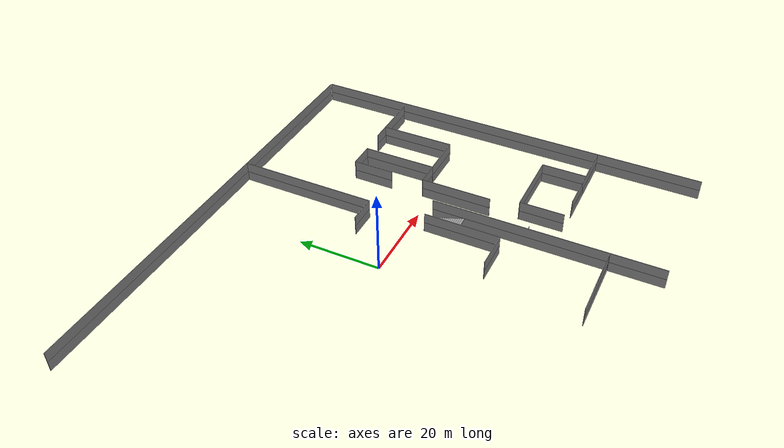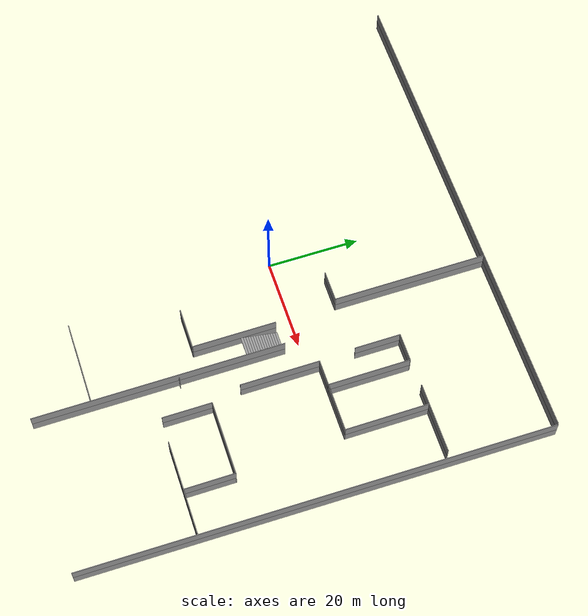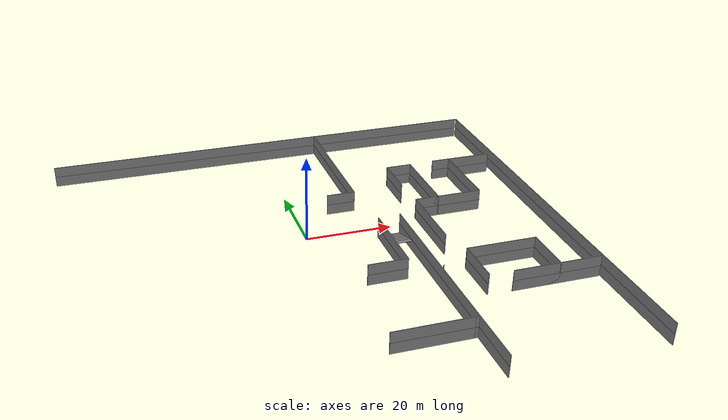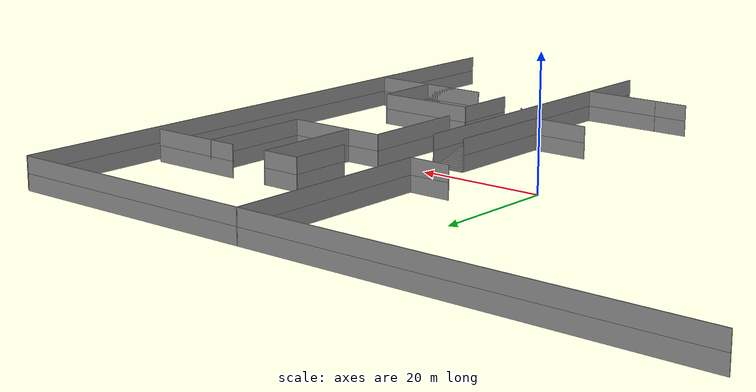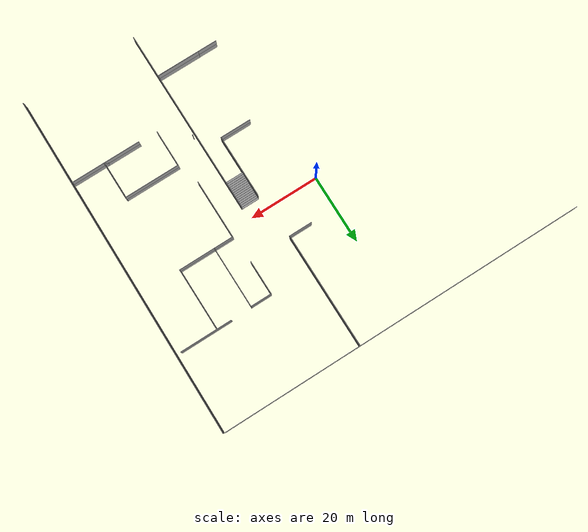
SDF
<sdf version="1.6">
 <model name="new_building">
  <pose>1.10912 -6.88825 0 0 -0 0</pose>
  <link name="Stairs_2">
   <visual name="Stairs_2_Visual_0">
    <pose>17.1005 3.25322 0.083333 0 -0 0</pose>
    <geometry><box><size>5 0.533333 0.166667</size></box></geometry>
    <material>
     <script><uri>file://media/materials/scripts/gazebo.material</uri><name>Gazebo/Grey</name></script>
     <ambient>1 1 1 1</ambient>
    </material>
    <meta><layer>0</layer></meta>
   </visual>
   <collision name="Stairs_2_Collision_0">
    <geometry><box><size>5 0.533333 0.166667</size></box></geometry>
    <pose>17.1005 3.25322 0.083333 0 -0 0</pose>
   </collision>
   <visual name="Stairs_2_Visual_1">
    <pose>17.1005 2.71989 0.25 0 -0 0</pose>
    <geometry><box><size>5 0.533333 0.166667</size></box></geometry>
    <material>
     <script><uri>file://media/materials/scripts/gazebo.material</uri><name>Gazebo/Grey</name></script>
     <ambient>1 1 1 1</ambient>
    </material>
    <meta><layer>0</layer></meta>
   </visual>
   <collision name="Stairs_2_Collision_1">
    <geometry><box><size>5 0.533333 0.166667</size></box></geometry>
    <pose>17.1005 2.71989 0.25 0 -0 0</pose>
   </collision>
   <visual name="Stairs_2_Visual_2">
    <pose>17.1005 2.18655 0.416667 0 -0 0</pose>
    <geometry><box><size>5 0.533333 0.166667</size></box></geometry>
    <material>
     <script><uri>file://media/materials/scripts/gazebo.material</uri><name>Gazebo/Grey</name></script>
     <ambient>1 1 1 1</ambient>
    </material>
    <meta><layer>0</layer></meta>
   </visual>
   <collision name="Stairs_2_Collision_2">
    <geometry><box><size>5 0.533333 0.166667</size></box></geometry>
    <pose>17.1005 2.18655 0.416667 0 -0 0</pose>
   </collision>
   <visual name="Stairs_2_Visual_3">
    <pose>17.1005 1.65322 0.583333 0 -0 0</pose>
    <geometry><box><size>5 0.533333 0.166667</size></box></geometry>
    <material>
     <script><uri>file://media/materials/scripts/gazebo.material</uri><name>Gazebo/Grey</name></script>
     <ambient>1 1 1 1</ambient>
    </material>
    <meta><layer>0</layer></meta>
   </visual>
   <collision name="Stairs_2_Collision_3">
    <geometry><box><size>5 0.533333 0.166667</size></box></geometry>
    <pose>17.1005 1.65322 0.583333 0 -0 0</pose>
   </collision>
   <visual name="Stairs_2_Visual_4">
    <pose>17.1005 1.11989 0.75 0 -0 0</pose>
    <geometry><box><size>5 0.533333 0.166667</size></box></geometry>
    <material>
     <script><uri>file://media/materials/scripts/gazebo.material</uri><name>Gazebo/Grey</name></script>
     <ambient>1 1 1 1</ambient>
    </material>
    <meta><layer>0</layer></meta>
   </visual>
   <collision name="Stairs_2_Collision_4">
    <geometry><box><size>5 0.533333 0.166667</size></box></geometry>
    <pose>17.1005 1.11989 0.75 0 -0 0</pose>
   </collision>
   <visual name="Stairs_2_Visual_5">
    <pose>17.1005 0.586554 0.916667 0 -0 0</pose>
    <geometry><box><size>5 0.533333 0.166667</size></box></geometry>
    <material>
     <script><uri>file://media/materials/scripts/gazebo.material</uri><name>Gazebo/Grey</name></script>
     <ambient>1 1 1 1</ambient>
    </material>
    <meta><layer>0</layer></meta>
   </visual>
   <collision name="Stairs_2_Collision_5">
    <geometry><box><size>5 0.533333 0.166667</size></box></geometry>
    <pose>17.1005 0.586554 0.916667 0 -0 0</pose>
   </collision>
   <visual name="Stairs_2_Visual_6">
    <pose>17.1005 0.05322 1.08333 0 -0 0</pose>
    <geometry><box><size>5 0.533333 0.166667</size></box></geometry>
    <material>
     <script><uri>file://media/materials/scripts/gazebo.material</uri><name>Gazebo/Grey</name></script>
     <ambient>1 1 1 1</ambient>
    </material>
    <meta><layer>0</layer></meta>
   </visual>
   <collision name="Stairs_2_Collision_6">
    <geometry><box><size>5 0.533333 0.166667</size></box></geometry>
    <pose>17.1005 0.05322 1.08333 0 -0 0</pose>
   </collision>
   <visual name="Stairs_2_Visual_7">
    <pose>17.1005 -0.480113 1.25 0 -0 0</pose>
    <geometry><box><size>5 0.533333 0.166667</size></box></geometry>
    <material>
     <script><uri>file://media/materials/scripts/gazebo.material</uri><name>Gazebo/Grey</name></script>
     <ambient>1 1 1 1</ambient>
    </material>
    <meta><layer>0</layer></meta>
   </visual>
   <collision name="Stairs_2_Collision_7">
    <geometry><box><size>5 0.533333 0.166667</size></box></geometry>
    <pose>17.1005 -0.480113 1.25 0 -0 0</pose>
   </collision>
   <visual name="Stairs_2_Visual_8">
    <pose>17.1005 -1.01345 1.41667 0 -0 0</pose>
    <geometry><box><size>5 0.533333 0.166667</size></box></geometry>
    <material>
     <script><uri>file://media/materials/scripts/gazebo.material</uri><name>Gazebo/Grey</name></script>
     <ambient>1 1 1 1</ambient>
    </material>
    <meta><layer>0</layer></meta>
   </visual>
   <collision name="Stairs_2_Collision_8">
    <geometry><box><size>5 0.533333 0.166667</size></box></geometry>
    <pose>17.1005 -1.01345 1.41667 0 -0 0</pose>
   </collision>
   <visual name="Stairs_2_Visual_9">
    <pose>17.1005 -1.54678 1.58333 0 -0 0</pose>
    <geometry><box><size>5 0.533333 0.166667</size></box></geometry>
    <material>
     <script><uri>file://media/materials/scripts/gazebo.material</uri><name>Gazebo/Grey</name></script>
     <ambient>1 1 1 1</ambient>
    </material>
    <meta><layer>0</layer></meta>
   </visual>
   <collision name="Stairs_2_Collision_9">
    <geometry><box><size>5 0.533333 0.166667</size></box></geometry>
    <pose>17.1005 -1.54678 1.58333 0 -0 0</pose>
   </collision>
   <visual name="Stairs_2_Visual_10">
    <pose>17.1005 -2.08011 1.75 0 -0 0</pose>
    <geometry><box><size>5 0.533333 0.166667</size></box></geometry>
    <material>
     <script><uri>file://media/materials/scripts/gazebo.material</uri><name>Gazebo/Grey</name></script>
     <ambient>1 1 1 1</ambient>
    </material>
    <meta><layer>0</layer></meta>
   </visual>
   <collision name="Stairs_2_Collision_10">
    <geometry><box><size>5 0.533333 0.166667</size></box></geometry>
    <pose>17.1005 -2.08011 1.75 0 -0 0</pose>
   </collision>
   <visual name="Stairs_2_Visual_11">
    <pose>17.1005 -2.61345 1.91667 0 -0 0</pose>
    <geometry><box><size>5 0.533333 0.166667</size></box></geometry>
    <material>
     <script><uri>file://media/materials/scripts/gazebo.material</uri><name>Gazebo/Grey</name></script>
     <ambient>1 1 1 1</ambient>
    </material>
    <meta><layer>0</layer></meta>
   </visual>
   <collision name="Stairs_2_Collision_11">
    <geometry><box><size>5 0.533333 0.166667</size></box></geometry>
    <pose>17.1005 -2.61345 1.91667 0 -0 0</pose>
   </collision>
   <visual name="Stairs_2_Visual_12">
    <pose>17.1005 -3.14678 2.08333 0 -0 0</pose>
    <geometry><box><size>5 0.533333 0.166667</size></box></geometry>
    <material>
     <script><uri>file://media/materials/scripts/gazebo.material</uri><name>Gazebo/Grey</name></script>
     <ambient>1 1 1 1</ambient>
    </material>
    <meta><layer>0</layer></meta>
   </visual>
   <collision name="Stairs_2_Collision_12">
    <geometry><box><size>5 0.533333 0.166667</size></box></geometry>
    <pose>17.1005 -3.14678 2.08333 0 -0 0</pose>
   </collision>
   <visual name="Stairs_2_Visual_13">
    <pose>17.1005 -3.68011 2.25 0 -0 0</pose>
    <geometry><box><size>5 0.533333 0.166667</size></box></geometry>
    <material>
     <script><uri>file://media/materials/scripts/gazebo.material</uri><name>Gazebo/Grey</name></script>
     <ambient>1 1 1 1</ambient>
    </material>
    <meta><layer>0</layer></meta>
   </visual>
   <collision name="Stairs_2_Collision_13">
    <geometry><box><size>5 0.533333 0.166667</size></box></geometry>
    <pose>17.1005 -3.68011 2.25 0 -0 0</pose>
   </collision>
   <visual name="Stairs_2_Visual_14">
    <pose>17.1005 -4.21345 2.41667 0 -0 0</pose>
    <geometry><box><size>5 0.533333 0.166667</size></box></geometry>
    <material>
     <script><uri>file://media/materials/scripts/gazebo.material</uri><name>Gazebo/Grey</name></script>
     <ambient>1 1 1 1</ambient>
    </material>
    <meta><layer>0</layer></meta>
   </visual>
   <collision name="Stairs_2_Collision_14">
    <geometry><box><size>5 0.533333 0.166667</size></box></geometry>
    <pose>17.1005 -4.21345 2.41667 0 -0 0</pose>
   </collision>
  </link>
  <link name="Wall_103">
   <collision name="Wall_103_Collision">
    <geometry><box><size>33.75 0.15 2.5</size></box></geometry>
    <pose>0 0 1.25 0 -0 0</pose>
   </collision>
   <visual name="Wall_103_Visual">
    <pose>0 0 1.25 0 -0 0</pose>
    <geometry><box><size>33.75 0.15 2.5</size></box></geometry>
    <material>
     <script><uri>file://media/materials/scripts/gazebo.material</uri><name>Gazebo/Grey</name></script>
     <ambient>1 1 1 1</ambient>
    </material>
    <meta><layer>1</layer></meta>
   </visual>
   <pose>13.35 33.6562 2.5 0 -0 -1.5708</pose>
  </link>
  <link name="Wall_104">
   <collision name="Wall_104_Collision">
    <geometry><box><size>6.75 0.15 2.5</size></box></geometry>
    <pose>0 0 1.25 0 -0 0</pose>
   </collision>
   <visual name="Wall_104_Visual">
    <pose>0 0 1.25 0 -0 0</pose>
    <geometry><box><size>6.75 0.15 2.5</size></box></geometry>
    <material>
     <script><uri>file://media/materials/scripts/gazebo.material</uri><name>Gazebo/Grey</name></script>
     <ambient>1 1 1 1</ambient>
    </material>
    <meta><layer>1</layer></meta>
   </visual>
   <pose>10.05 16.8562 2.5 0 -0 3.14159</pose>
  </link>
  <link name="Wall_106">
   <collision name="Wall_106_Collision">
    <geometry><box><size>15.25 0.15 2.5</size></box></geometry>
    <pose>0 0 1.25 0 -0 0</pose>
   </collision>
   <visual name="Wall_106_Visual">
    <pose>0 0 1.25 0 -0 0</pose>
    <geometry><box><size>15.25 0.15 2.5</size></box></geometry>
    <material>
     <script><uri>file://media/materials/scripts/gazebo.material</uri><name>Gazebo/Grey</name></script>
     <ambient>1 1 1 1</ambient>
    </material>
    <meta><layer>1</layer></meta>
   </visual>
   <pose>45.2246 27.2094 2.5 0 -0 3.14159</pose>
  </link>
  <link name="Wall_107">
   <collision name="Wall_107_Collision">
    <geometry><box><size>4.5 0.15 2.5</size></box></geometry>
    <pose>0 0 1.25 0 -0 0</pose>
   </collision>
   <visual name="Wall_107_Visual">
    <pose>0 0 1.25 0 -0 0</pose>
    <geometry><box><size>4.5 0.15 2.5</size></box></geometry>
    <material>
     <script><uri>file://media/materials/scripts/gazebo.material</uri><name>Gazebo/Grey</name></script>
     <ambient>1 1 1 1</ambient>
    </material>
    <meta><layer>1</layer></meta>
   </visual>
   <pose>39.8496 27.2094 2.5 0 -0 0</pose>
  </link>
  <link name="Wall_108">
   <collision name="Wall_108_Collision">
    <geometry><box><size>18.25 0.15 2.5</size></box></geometry>
    <pose>0 0 1.25 0 -0 0</pose>
   </collision>
   <visual name="Wall_108_Visual">
    <pose>0 0 1.25 0 -0 0</pose>
    <geometry><box><size>18.25 0.15 2.5</size></box></geometry>
    <material>
     <script><uri>file://media/materials/scripts/gazebo.material</uri><name>Gazebo/Grey</name></script>
     <ambient>1 1 1 1</ambient>
    </material>
    <meta><layer>1</layer></meta>
   </visual>
   <pose>42.0246 18.1594 2.5 0 -0 -1.5708</pose>
  </link>
  <link name="Wall_109">
   <collision name="Wall_109_Collision">
    <geometry><box><size>16.25 0.15 2.5</size></box></geometry>
    <pose>0 0 1.25 0 -0 0</pose>
   </collision>
   <visual name="Wall_109_Visual">
    <pose>0 0 1.25 0 -0 0</pose>
    <geometry><box><size>16.25 0.15 2.5</size></box></geometry>
    <material>
     <script><uri>file://media/materials/scripts/gazebo.material</uri><name>Gazebo/Grey</name></script>
     <ambient>1 1 1 1</ambient>
    </material>
    <meta><layer>1</layer></meta>
   </visual>
   <pose>33.9746 9.10941 2.5 0 -0 3.14159</pose>
  </link>
  <link name="Wall_110">
   <collision name="Wall_110_Collision">
    <geometry><box><size>5.75 0.15 2.5</size></box></geometry>
    <pose>0 0 1.25 0 -0 0</pose>
   </collision>
   <visual name="Wall_110_Visual">
    <pose>0 0 1.25 0 -0 0</pose>
    <geometry><box><size>5.75 0.15 2.5</size></box></geometry>
    <material>
     <script><uri>file://media/materials/scripts/gazebo.material</uri><name>Gazebo/Grey</name></script>
     <ambient>1 1 1 1</ambient>
    </material>
    <meta><layer>1</layer></meta>
   </visual>
   <pose>28.7246 9.10941 2.5 0 -0 0</pose>
  </link>
  <link name="Wall_111">
   <collision name="Wall_111_Collision">
    <geometry><box><size>18 0.15 2.5</size></box></geometry>
    <pose>0 0 1.25 0 -0 0</pose>
   </collision>
   <visual name="Wall_111_Visual">
    <pose>0 0 1.25 0 -0 0</pose>
    <geometry><box><size>18 0.15 2.5</size></box></geometry>
    <material>
     <script><uri>file://media/materials/scripts/gazebo.material</uri><name>Gazebo/Grey</name></script>
     <ambient>1 1 1 1</ambient>
    </material>
    <meta><layer>1</layer></meta>
   </visual>
   <pose>31.5246 18.0344 2.5 0 -0 1.5708</pose>
  </link>
  <link name="Wall_112">
   <collision name="Wall_112_Collision">
    <geometry><box><size>6.25 0.15 2.5</size></box></geometry>
    <pose>0 0 1.25 0 -0 0</pose>
   </collision>
   <visual name="Wall_112_Visual">
    <pose>0 0 1.25 0 -0 0</pose>
    <geometry><box><size>6.25 0.15 2.5</size></box></geometry>
    <material>
     <script><uri>file://media/materials/scripts/gazebo.material</uri><name>Gazebo/Grey</name></script>
     <ambient>1 1 1 1</ambient>
    </material>
    <meta><layer>1</layer></meta>
   </visual>
   <pose>28.4746 26.9594 2.5 0 -0 3.14159</pose>
  </link>
  <link name="Wall_113">
   <collision name="Wall_113_Collision">
    <geometry><box><size>10 0.15 2.5</size></box></geometry>
    <pose>0 0 1.25 0 -0 0</pose>
   </collision>
   <visual name="Wall_113_Visual">
    <pose>0 0 1.25 0 -0 0</pose>
    <geometry><box><size>10 0.15 2.5</size></box></geometry>
    <material>
     <script><uri>file://media/materials/scripts/gazebo.material</uri><name>Gazebo/Grey</name></script>
     <ambient>1 1 1 1</ambient>
    </material>
    <meta><layer>1</layer></meta>
   </visual>
   <pose>25.4246 22.0344 2.5 0 -0 -1.5708</pose>
  </link>
  <link name="Wall_114">
   <collision name="Wall_114_Collision">
    <geometry><box><size>17.25 0.15 2.5</size></box></geometry>
    <pose>0 0 1.25 0 -0 0</pose>
   </collision>
   <visual name="Wall_114_Visual">
    <pose>0 0 1.25 0 -0 0</pose>
    <geometry><box><size>17.25 0.15 2.5</size></box></geometry>
    <material>
     <script><uri>file://media/materials/scripts/gazebo.material</uri><name>Gazebo/Grey</name></script>
     <ambient>1 1 1 1</ambient>
    </material>
    <meta><layer>1</layer></meta>
   </visual>
   <pose>25.9246 0.55941 2.5 0 -0 -1.5708</pose>
  </link>
  <link name="Wall_115">
   <collision name="Wall_115_Collision">
    <geometry><box><size>20.25 0.15 2.5</size></box></geometry>
    <pose>0 0 1.25 0 -0 0</pose>
   </collision>
   <visual name="Wall_115_Visual">
    <pose>0 0 1.25 0 -0 0</pose>
    <geometry><box><size>20.25 0.15 2.5</size></box></geometry>
    <material>
     <script><uri>file://media/materials/scripts/gazebo.material</uri><name>Gazebo/Grey</name></script>
     <ambient>1 1 1 1</ambient>
    </material>
    <meta><layer>1</layer></meta>
   </visual>
   <pose>43.4774 -25.4908 2.5 0 -0 3.14159</pose>
  </link>
  <link name="Wall_116">
   <collision name="Wall_116_Collision">
    <geometry><box><size>10.75 0.15 2.5</size></box></geometry>
    <pose>0 0 1.25 0 -0 0</pose>
   </collision>
   <visual name="Wall_116_Visual">
    <pose>0 0 1.25 0 -0 0</pose>
    <geometry><box><size>10.75 0.15 2.5</size></box></geometry>
    <material>
     <script><uri>file://media/materials/scripts/gazebo.material</uri><name>Gazebo/Grey</name></script>
     <ambient>1 1 1 1</ambient>
    </material>
    <meta><layer>1</layer></meta>
   </visual>
   <pose>38.7274 -25.4908 2.5 0 -0 0</pose>
  </link>
  <link name="Wall_117">
   <collision name="Wall_117_Collision">
    <geometry><box><size>11 0.15 2.5</size></box></geometry>
    <pose>0 0 1.25 0 -0 0</pose>
   </collision>
   <visual name="Wall_117_Visual">
    <pose>0 0 1.25 0 -0 0</pose>
    <geometry><box><size>11 0.15 2.5</size></box></geometry>
    <material>
     <script><uri>file://media/materials/scripts/gazebo.material</uri><name>Gazebo/Grey</name></script>
     <ambient>1 1 1 1</ambient>
    </material>
    <meta><layer>1</layer></meta>
   </visual>
   <pose>44.0275 -20.0658 2.5 0 -0 1.5708</pose>
  </link>
  <link name="Wall_118">
   <collision name="Wall_118_Collision">
    <geometry><box><size>16.25 0.15 2.5</size></box></geometry>
    <pose>0 0 1.25 0 -0 0</pose>
   </collision>
   <visual name="Wall_118_Visual">
    <pose>0 0 1.25 0 -0 0</pose>
    <geometry><box><size>16.25 0.15 2.5</size></box></geometry>
    <material>
     <script><uri>file://media/materials/scripts/gazebo.material</uri><name>Gazebo/Grey</name></script>
     <ambient>1 1 1 1</ambient>
    </material>
    <meta><layer>1</layer></meta>
   </visual>
   <pose>35.9774 -14.6408 2.5 0 -0 3.14159</pose>
  </link>
  <link name="Wall_119">
   <collision name="Wall_119_Collision">
    <geometry><box><size>10.75 0.15 2.5</size></box></geometry>
    <pose>0 0 1.25 0 -0 0</pose>
   </collision>
   <visual name="Wall_119_Visual">
    <pose>0 0 1.25 0 -0 0</pose>
    <geometry><box><size>10.75 0.15 2.5</size></box></geometry>
    <material>
     <script><uri>file://media/materials/scripts/gazebo.material</uri><name>Gazebo/Grey</name></script>
     <ambient>1 1 1 1</ambient>
    </material>
    <meta><layer>1</layer></meta>
   </visual>
   <pose>27.9274 -19.9408 2.5 0 -0 -1.5708</pose>
  </link>
  <link name="Wall_120">
   <collision name="Wall_120_Collision">
    <geometry><box><size>54.25 0.15 2.5</size></box></geometry>
    <pose>0 0 1.25 0 -0 0</pose>
   </collision>
   <visual name="Wall_120_Visual">
    <pose>0 0 1.25 0 -0 0</pose>
    <geometry><box><size>54.25 0.15 2.5</size></box></geometry>
    <material>
     <script><uri>file://media/materials/scripts/gazebo.material</uri><name>Gazebo/Grey</name></script>
     <ambient>1 1 1 1</ambient>
    </material>
    <meta><layer>1</layer></meta>
   </visual>
   <pose>19.8201 -23.5225 2.5 0 -0 1.5708</pose>
  </link>
  <link name="Wall_122">
   <collision name="Wall_122_Collision">
    <geometry><box><size>17.25 0.15 2.5</size></box></geometry>
    <pose>0 0 1.25 0 -0 0</pose>
   </collision>
   <visual name="Wall_122_Visual">
    <pose>0 0 1.25 0 -0 0</pose>
    <geometry><box><size>17.25 0.15 2.5</size></box></geometry>
    <material>
     <script><uri>file://media/materials/scripts/gazebo.material</uri><name>Gazebo/Grey</name></script>
     <ambient>1 1 1 1</ambient>
    </material>
    <meta><layer>1</layer></meta>
   </visual>
   <pose>10.4106 -38.0432 2.5 0 -0 3.14159</pose>
  </link>
  <link name="Wall_123">
   <collision name="Wall_123_Collision">
    <geometry><box><size>12.5 0.15 2.5</size></box></geometry>
    <pose>0 0 1.25 0 -0 0</pose>
   </collision>
   <visual name="Wall_123_Visual">
    <pose>0 0 1.25 0 -0 0</pose>
    <geometry><box><size>12.5 0.15 2.5</size></box></geometry>
    <material>
     <script><uri>file://media/materials/scripts/gazebo.material</uri><name>Gazebo/Grey</name></script>
     <ambient>1 1 1 1</ambient>
    </material>
    <meta><layer>1</layer></meta>
   </visual>
   <pose>13.5592 -38.0182 2.5 0 -0 0</pose>
  </link>
  <link name="Wall_124">
   <collision name="Wall_124_Collision">
    <geometry><box><size>0.16 0.15 2.5</size></box></geometry>
    <pose>0 0 1.25 0 -0 0</pose>
   </collision>
   <visual name="Wall_124_Visual">
    <pose>0 0 1.25 0 -0 0</pose>
    <geometry><box><size>0.16 0.15 2.5</size></box></geometry>
    <material>
     <script><uri>file://media/materials/scripts/gazebo.material</uri><name>Gazebo/Grey</name></script>
     <ambient>1 1 1 1</ambient>
    </material>
    <meta><layer>1</layer></meta>
   </visual>
   <pose>20.5024 -19.482 2.5 0 -0 0</pose>
  </link>
  <link name="Wall_125">
   <collision name="Wall_125_Collision">
    <geometry><box><size>18.25 0.15 2.5</size></box></geometry>
    <pose>0 0 1.25 0 -0 0</pose>
   </collision>
   <visual name="Wall_125_Visual">
    <pose>0 0 1.25 0 -0 0</pose>
    <geometry><box><size>18.25 0.15 2.5</size></box></geometry>
    <material>
     <script><uri>file://media/materials/scripts/gazebo.material</uri><name>Gazebo/Grey</name></script>
     <ambient>1 1 1 1</ambient>
    </material>
    <meta><layer>1</layer></meta>
   </visual>
   <pose>14.5552 -5.83955 2.5 0 -0 -1.5708</pose>
  </link>
  <link name="Wall_126">
   <collision name="Wall_126_Collision">
    <geometry><box><size>9 0.15 2.5</size></box></geometry>
    <pose>0 0 1.25 0 -0 0</pose>
   </collision>
   <visual name="Wall_126_Visual">
    <pose>0 0 1.25 0 -0 0</pose>
    <geometry><box><size>9 0.15 2.5</size></box></geometry>
    <material>
     <script><uri>file://media/materials/scripts/gazebo.material</uri><name>Gazebo/Grey</name></script>
     <ambient>1 1 1 1</ambient>
    </material>
    <meta><layer>1</layer></meta>
   </visual>
   <pose>10.1302 -14.8896 2.5 0 -0 3.14159</pose>
  </link>
  <link name="Wall_41">
   <collision name="Wall_41_Collision">
    <geometry><box><size>33.75 0.15 2.5</size></box></geometry>
    <pose>0 0 1.25 0 -0 0</pose>
   </collision>
   <visual name="Wall_41_Visual">
    <pose>0 0 1.25 0 -0 0</pose>
    <geometry><box><size>33.75 0.15 2.5</size></box></geometry>
    <material>
     <script><uri>file://media/materials/scripts/gazebo.material</uri><name>Gazebo/Grey</name></script>
     <ambient>1 1 1 1</ambient>
    </material>
    <meta><layer>0</layer></meta>
   </visual>
   <pose>13.35 33.6562 0 0 -0 -1.5708</pose>
  </link>
  <link name="Wall_42">
   <collision name="Wall_42_Collision">
    <geometry><box><size>6.75 0.15 2.5</size></box></geometry>
    <pose>0 0 1.25 0 -0 0</pose>
   </collision>
   <visual name="Wall_42_Visual">
    <pose>0 0 1.25 0 -0 0</pose>
    <geometry><box><size>6.75 0.15 2.5</size></box></geometry>
    <material>
     <script><uri>file://media/materials/scripts/gazebo.material</uri><name>Gazebo/Grey</name></script>
     <ambient>1 1 1 1</ambient>
    </material>
    <meta><layer>0</layer></meta>
   </visual>
   <pose>10.05 16.8562 0 0 -0 3.14159</pose>
  </link>
  <link name="Wall_47">
   <collision name="Wall_47_Collision">
    <geometry><box><size>15.25 0.15 2.5</size></box></geometry>
    <pose>0 0 1.25 0 -0 0</pose>
   </collision>
   <visual name="Wall_47_Visual">
    <pose>0 0 1.25 0 -0 0</pose>
    <geometry><box><size>15.25 0.15 2.5</size></box></geometry>
    <material>
     <script><uri>file://media/materials/scripts/gazebo.material</uri><name>Gazebo/Grey</name></script>
     <ambient>1 1 1 1</ambient>
    </material>
    <meta><layer>0</layer></meta>
   </visual>
   <pose>45.2246 27.2094 0 0 -0 3.14159</pose>
  </link>
  <link name="Wall_48">
   <collision name="Wall_48_Collision">
    <geometry><box><size>4.5 0.15 2.5</size></box></geometry>
    <pose>0 0 1.25 0 -0 0</pose>
   </collision>
   <visual name="Wall_48_Visual">
    <pose>0 0 1.25 0 -0 0</pose>
    <geometry><box><size>4.5 0.15 2.5</size></box></geometry>
    <material>
     <script><uri>file://media/materials/scripts/gazebo.material</uri><name>Gazebo/Grey</name></script>
     <ambient>1 1 1 1</ambient>
    </material>
    <meta><layer>0</layer></meta>
   </visual>
   <pose>39.8496 27.2094 0 0 -0 0</pose>
  </link>
  <link name="Wall_49">
   <collision name="Wall_49_Collision">
    <geometry><box><size>18.25 0.15 2.5</size></box></geometry>
    <pose>0 0 1.25 0 -0 0</pose>
   </collision>
   <visual name="Wall_49_Visual">
    <pose>0 0 1.25 0 -0 0</pose>
    <geometry><box><size>18.25 0.15 2.5</size></box></geometry>
    <material>
     <script><uri>file://media/materials/scripts/gazebo.material</uri><name>Gazebo/Grey</name></script>
     <ambient>1 1 1 1</ambient>
    </material>
    <meta><layer>0</layer></meta>
   </visual>
   <pose>42.0246 18.1594 0 0 -0 -1.5708</pose>
  </link>
  <link name="Wall_50">
   <collision name="Wall_50_Collision">
    <geometry><box><size>16.25 0.15 2.5</size></box></geometry>
    <pose>0 0 1.25 0 -0 0</pose>
   </collision>
   <visual name="Wall_50_Visual">
    <pose>0 0 1.25 0 -0 0</pose>
    <geometry><box><size>16.25 0.15 2.5</size></box></geometry>
    <material>
     <script><uri>file://media/materials/scripts/gazebo.material</uri><name>Gazebo/Grey</name></script>
     <ambient>1 1 1 1</ambient>
    </material>
    <meta><layer>0</layer></meta>
   </visual>
   <pose>33.9746 9.10941 0 0 -0 3.14159</pose>
  </link>
  <link name="Wall_51">
   <collision name="Wall_51_Collision">
    <geometry><box><size>5.75 0.15 2.5</size></box></geometry>
    <pose>0 0 1.25 0 -0 0</pose>
   </collision>
   <visual name="Wall_51_Visual">
    <pose>0 0 1.25 0 -0 0</pose>
    <geometry><box><size>5.75 0.15 2.5</size></box></geometry>
    <material>
     <script><uri>file://media/materials/scripts/gazebo.material</uri><name>Gazebo/Grey</name></script>
     <ambient>1 1 1 1</ambient>
    </material>
    <meta><layer>0</layer></meta>
   </visual>
   <pose>28.7246 9.10941 0 0 -0 0</pose>
  </link>
  <link name="Wall_52">
   <collision name="Wall_52_Collision">
    <geometry><box><size>18 0.15 2.5</size></box></geometry>
    <pose>0 0 1.25 0 -0 0</pose>
   </collision>
   <visual name="Wall_52_Visual">
    <pose>0 0 1.25 0 -0 0</pose>
    <geometry><box><size>18 0.15 2.5</size></box></geometry>
    <material>
     <script><uri>file://media/materials/scripts/gazebo.material</uri><name>Gazebo/Grey</name></script>
     <ambient>1 1 1 1</ambient>
    </material>
    <meta><layer>0</layer></meta>
   </visual>
   <pose>31.5246 18.0344 0 0 -0 1.5708</pose>
  </link>
  <link name="Wall_53">
   <collision name="Wall_53_Collision">
    <geometry><box><size>6.25 0.15 2.5</size></box></geometry>
    <pose>0 0 1.25 0 -0 0</pose>
   </collision>
   <visual name="Wall_53_Visual">
    <pose>0 0 1.25 0 -0 0</pose>
    <geometry><box><size>6.25 0.15 2.5</size></box></geometry>
    <material>
     <script><uri>file://media/materials/scripts/gazebo.material</uri><name>Gazebo/Grey</name></script>
     <ambient>1 1 1 1</ambient>
    </material>
    <meta><layer>0</layer></meta>
   </visual>
   <pose>28.4746 26.9594 0 0 -0 3.14159</pose>
  </link>
  <link name="Wall_54">
   <collision name="Wall_54_Collision">
    <geometry><box><size>10 0.15 2.5</size></box></geometry>
    <pose>0 0 1.25 0 -0 0</pose>
   </collision>
   <visual name="Wall_54_Visual">
    <pose>0 0 1.25 0 -0 0</pose>
    <geometry><box><size>10 0.15 2.5</size></box></geometry>
    <material>
     <script><uri>file://media/materials/scripts/gazebo.material</uri><name>Gazebo/Grey</name></script>
     <ambient>1 1 1 1</ambient>
    </material>
    <meta><layer>0</layer></meta>
   </visual>
   <pose>25.4246 22.0344 0 0 -0 -1.5708</pose>
  </link>
  <link name="Wall_56">
   <collision name="Wall_56_Collision">
    <geometry><box><size>17.25 0.15 2.5</size></box></geometry>
    <pose>0 0 1.25 0 -0 0</pose>
   </collision>
   <visual name="Wall_56_Visual">
    <pose>0 0 1.25 0 -0 0</pose>
    <geometry><box><size>17.25 0.15 2.5</size></box></geometry>
    <material>
     <script><uri>file://media/materials/scripts/gazebo.material</uri><name>Gazebo/Grey</name></script>
     <ambient>1 1 1 1</ambient>
    </material>
    <meta><layer>0</layer></meta>
   </visual>
   <pose>25.9246 0.55941 0 0 -0 -1.5708</pose>
  </link>
  <link name="Wall_58">
   <collision name="Wall_58_Collision">
    <geometry><box><size>20.25 0.15 2.5</size></box></geometry>
    <pose>0 0 1.25 0 -0 0</pose>
   </collision>
   <visual name="Wall_58_Visual">
    <pose>0 0 1.25 0 -0 0</pose>
    <geometry><box><size>20.25 0.15 2.5</size></box></geometry>
    <material>
     <script><uri>file://media/materials/scripts/gazebo.material</uri><name>Gazebo/Grey</name></script>
     <ambient>1 1 1 1</ambient>
    </material>
    <meta><layer>0</layer></meta>
   </visual>
   <pose>43.4774 -25.4908 0 0 -0 3.14159</pose>
  </link>
  <link name="Wall_59">
   <collision name="Wall_59_Collision">
    <geometry><box><size>10.75 0.15 2.5</size></box></geometry>
    <pose>0 0 1.25 0 -0 0</pose>
   </collision>
   <visual name="Wall_59_Visual">
    <pose>0 0 1.25 0 -0 0</pose>
    <geometry><box><size>10.75 0.15 2.5</size></box></geometry>
    <material>
     <script><uri>file://media/materials/scripts/gazebo.material</uri><name>Gazebo/Grey</name></script>
     <ambient>1 1 1 1</ambient>
    </material>
    <meta><layer>0</layer></meta>
   </visual>
   <pose>38.7274 -25.4908 0 0 -0 0</pose>
  </link>
  <link name="Wall_6">
   <collision name="Wall_6_Collision">
    <geometry><box><size>101.258 0.15 2.5</size></box></geometry>
    <pose>0 0 1.25 0 -0 0</pose>
   </collision>
   <visual name="Wall_6_Visual">
    <pose>0 0 1.25 0 -0 0</pose>
    <geometry><box><size>101.258 0.15 2.5</size></box></geometry>
    <material>
     <script><uri>file://media/materials/scripts/gazebo.material</uri><name>Gazebo/Grey</name></script>
     <ambient>1 1 1 1</ambient>
    </material>
    <meta><layer>0</layer></meta>
   </visual>
   <pose>54.1056 -0.23759 0 0 -0 1.56345</pose>
  </link>
  <link name="Wall_60">
   <collision name="Wall_60_Collision">
    <geometry><box><size>11 0.15 2.5</size></box></geometry>
    <pose>0 0 1.25 0 -0 0</pose>
   </collision>
   <visual name="Wall_60_Visual">
    <pose>0 0 1.25 0 -0 0</pose>
    <geometry><box><size>11 0.15 2.5</size></box></geometry>
    <material>
     <script><uri>file://media/materials/scripts/gazebo.material</uri><name>Gazebo/Grey</name></script>
     <ambient>1 1 1 1</ambient>
    </material>
    <meta><layer>0</layer></meta>
   </visual>
   <pose>44.0274 -20.0658 0 0 -0 1.5708</pose>
  </link>
  <link name="Wall_61">
   <collision name="Wall_61_Collision">
    <geometry><box><size>16.25 0.15 2.5</size></box></geometry>
    <pose>0 0 1.25 0 -0 0</pose>
   </collision>
   <visual name="Wall_61_Visual">
    <pose>0 0 1.25 0 -0 0</pose>
    <geometry><box><size>16.25 0.15 2.5</size></box></geometry>
    <material>
     <script><uri>file://media/materials/scripts/gazebo.material</uri><name>Gazebo/Grey</name></script>
     <ambient>1 1 1 1</ambient>
    </material>
    <meta><layer>0</layer></meta>
   </visual>
   <pose>35.9774 -14.6408 0 0 -0 3.14159</pose>
  </link>
  <link name="Wall_62">
   <collision name="Wall_62_Collision">
    <geometry><box><size>10.75 0.15 2.5</size></box></geometry>
    <pose>0 0 1.25 0 -0 0</pose>
   </collision>
   <visual name="Wall_62_Visual">
    <pose>0 0 1.25 0 -0 0</pose>
    <geometry><box><size>10.75 0.15 2.5</size></box></geometry>
    <material>
     <script><uri>file://media/materials/scripts/gazebo.material</uri><name>Gazebo/Grey</name></script>
     <ambient>1 1 1 1</ambient>
    </material>
    <meta><layer>0</layer></meta>
   </visual>
   <pose>27.9274 -19.9408 0 0 -0 -1.5708</pose>
  </link>
  <link name="Wall_65">
   <collision name="Wall_65_Collision">
    <geometry><box><size>54.25 0.15 2.5</size></box></geometry>
    <pose>0 0 1.25 0 -0 0</pose>
   </collision>
   <visual name="Wall_65_Visual">
    <pose>0 0 1.25 0 -0 0</pose>
    <geometry><box><size>54.25 0.15 2.5</size></box></geometry>
    <material>
     <script><uri>file://media/materials/scripts/gazebo.material</uri><name>Gazebo/Grey</name></script>
     <ambient>1 1 1 1</ambient>
    </material>
    <meta><layer>0</layer></meta>
   </visual>
   <pose>19.8201 -23.5225 0 0 -0 1.5708</pose>
  </link>
  <link name="Wall_7">
   <collision name="Wall_7_Collision">
    <geometry><box><size>108 0.15 2.5</size></box></geometry>
    <pose>0 0 1.25 0 -0 0</pose>
   </collision>
   <visual name="Wall_7_Visual">
    <pose>0 0 1.25 0 -0 0</pose>
    <geometry><box><size>108 0.15 2.5</size></box></geometry>
    <material>
     <script><uri>file://media/materials/scripts/gazebo.material</uri><name>Gazebo/Grey</name></script>
     <ambient>1 1 1 1</ambient>
    </material>
    <meta><layer>0</layer></meta>
   </visual>
   <pose>0.180601 50.4387 0 0 -0 3.14159</pose>
  </link>
  <link name="Wall_70">
   <collision name="Wall_70_Collision">
    <geometry><box><size>17.25 0.15 2.5</size></box></geometry>
    <pose>0 0 1.25 0 -0 0</pose>
   </collision>
   <visual name="Wall_70_Visual">
    <pose>0 0 1.25 0 -0 0</pose>
    <geometry><box><size>17.25 0.15 2.5</size></box></geometry>
    <material>
     <script><uri>file://media/materials/scripts/gazebo.material</uri><name>Gazebo/Grey</name></script>
     <ambient>1 1 1 1</ambient>
    </material>
    <meta><layer>0</layer></meta>
   </visual>
   <pose>10.4106 -38.0432 0 0 -0 3.14159</pose>
  </link>
  <link name="Wall_74">
   <collision name="Wall_74_Collision">
    <geometry><box><size>12.5 0.15 2.5</size></box></geometry>
    <pose>0 0 1.25 0 -0 0</pose>
   </collision>
   <visual name="Wall_74_Visual">
    <pose>0 0 1.25 0 -0 0</pose>
    <geometry><box><size>12.5 0.15 2.5</size></box></geometry>
    <material>
     <script><uri>file://media/materials/scripts/gazebo.material</uri><name>Gazebo/Grey</name></script>
     <ambient>1 1 1 1</ambient>
    </material>
    <meta><layer>0</layer></meta>
   </visual>
   <pose>13.5592 -38.0182 0 0 -0 0</pose>
  </link>
  <link name="Wall_77">
   <collision name="Wall_77_Collision">
    <geometry><box><size>0.16 0.15 2.5</size></box></geometry>
    <pose>0 0 1.25 0 -0 0</pose>
   </collision>
   <visual name="Wall_77_Visual">
    <pose>0 0 1.25 0 -0 0</pose>
    <geometry><box><size>0.16 0.15 2.5</size></box></geometry>
    <material>
     <script><uri>file://media/materials/scripts/gazebo.material</uri><name>Gazebo/Grey</name></script>
     <ambient>1 1 1 1</ambient>
    </material>
    <meta><layer>0</layer></meta>
   </visual>
   <pose>20.5024 -19.482 0 0 -0 0</pose>
  </link>
  <link name="Wall_80">
   <collision name="Wall_80_Collision">
    <geometry><box><size>18.25 0.15 2.5</size></box></geometry>
    <pose>0 0 1.25 0 -0 0</pose>
   </collision>
   <visual name="Wall_80_Visual">
    <pose>0 0 1.25 0 -0 0</pose>
    <geometry><box><size>18.25 0.15 2.5</size></box></geometry>
    <material>
     <script><uri>file://media/materials/scripts/gazebo.material</uri><name>Gazebo/Grey</name></script>
     <ambient>1 1 1 1</ambient>
    </material>
    <meta><layer>0</layer></meta>
   </visual>
   <pose>14.5552 -5.83955 0 0 -0 -1.5708</pose>
  </link>
  <link name="Wall_81">
   <collision name="Wall_81_Collision">
    <geometry><box><size>9 0.15 2.5</size></box></geometry>
    <pose>0 0 1.25 0 -0 0</pose>
   </collision>
   <visual name="Wall_81_Visual">
    <pose>0 0 1.25 0 -0 0</pose>
    <geometry><box><size>9 0.15 2.5</size></box></geometry>
    <material>
     <script><uri>file://media/materials/scripts/gazebo.material</uri><name>Gazebo/Grey</name></script>
     <ambient>1 1 1 1</ambient>
    </material>
    <meta><layer>0</layer></meta>
   </visual>
   <pose>10.1302 -14.8896 0 0 -0 3.14159</pose>
  </link>
  <link name="Wall_87">
   <collision name="Wall_87_Collision">
    <geometry><box><size>101.258 0.15 2.5</size></box></geometry>
    <pose>0 0 1.25 0 -0 0</pose>
   </collision>
   <visual name="Wall_87_Visual">
    <pose>0 0 1.25 0 -0 0</pose>
    <geometry><box><size>101.258 0.15 2.5</size></box></geometry>
    <material>
     <script><uri>file://media/materials/scripts/gazebo.material</uri><name>Gazebo/Grey</name></script>
     <ambient>1 1 1 1</ambient>
    </material>
    <meta><layer>1</layer></meta>
   </visual>
   <pose>54.1056 -0.237591 2.5 0 -0 1.56345</pose>
  </link>
  <link name="Wall_88">
   <collision name="Wall_88_Collision">
    <geometry><box><size>108 0.15 2.5</size></box></geometry>
    <pose>0 0 1.25 0 -0 0</pose>
   </collision>
   <visual name="Wall_88_Visual">
    <pose>0 0 1.25 0 -0 0</pose>
    <geometry><box><size>108 0.15 2.5</size></box></geometry>
    <material>
     <script><uri>file://media/materials/scripts/gazebo.material</uri><name>Gazebo/Grey</name></script>
     <ambient>1 1 1 1</ambient>
    </material>
    <meta><layer>1</layer></meta>
   </visual>
   <pose>0.180601 50.4387 2.5 0 -0 3.14159</pose>
  </link>
  <static>1</static>
 </model>
</sdf>
